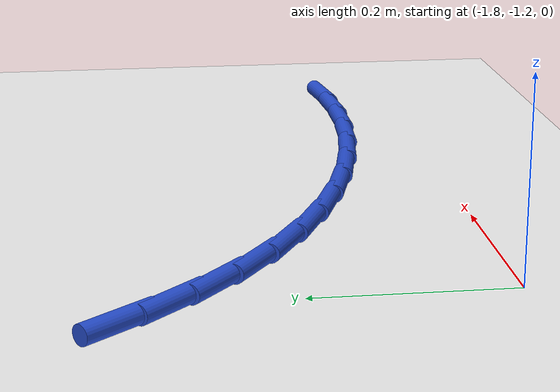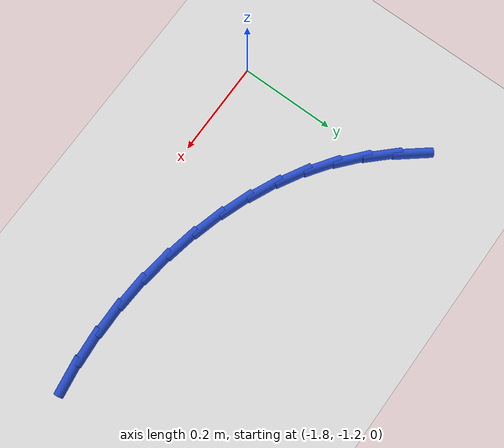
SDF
<sdf version="1.6">
 <world name="default">
  <model name="ground_plane">
   <static>1</static>
   <link name="link">
    <collision name="collision">
     <geometry><plane><normal>0 0 1</normal><size>100 100</size></plane></geometry>
     <surface><friction><ode><mu>100</mu><mu2>50</mu2></ode></friction></surface>
    </collision>
    <visual name="visual">
     <cast_shadows>0</cast_shadows>
     <geometry><plane><normal>0 0 1</normal><size>100 100</size></plane></geometry>
     <material>
      <script><uri>file://media/materials/scripts/gazebo.material</uri><name>Gazebo/WhiteGlow</name></script>
     </material>
    </visual>
   </link>
  </model>
  <model name="line">
   <link name="link_70">
    <pose>-1.8506236121854325 -0.8355162346202203 0.01 0 1.57 -0.882279308371972</pose>
    <collision name="collision">
     <geometry><cylinder><radius>0.01</radius><length>0.08</length></cylinder></geometry>
    </collision>
    <visual name="visual">
     <material>
      <script><name>Gazebo/Blue</name><uri>file://media/materials/scripts/gazebo.material</uri></script>
     </material>
     <geometry><cylinder><radius>0.01</radius><length>0.08</length></cylinder></geometry>
    </visual>
   </link>
   <link name="link_71">
    <pose>-1.8125379447369583 -0.8818015271108821 0.01 0 1.57 -0.7977622971478243</pose>
    <collision name="collision">
     <geometry><cylinder><radius>0.01</radius><length>0.08</length></cylinder></geometry>
    </collision>
    <visual name="visual">
     <material>
      <script><name>Gazebo/Blue</name><uri>file://media/materials/scripts/gazebo.material</uri></script>
     </material>
     <geometry><cylinder><radius>0.01</radius><length>0.08</length></cylinder></geometry>
    </visual>
   </link>
   <link name="link_72">
    <pose>-1.7709494573728466 -0.9244313540415253 0.01 0 1.57 -0.7042579148545719</pose>
    <collision name="collision">
     <geometry><cylinder><radius>0.01</radius><length>0.08</length></cylinder></geometry>
    </collision>
    <visual name="visual">
     <material>
      <script><name>Gazebo/Blue</name><uri>file://media/materials/scripts/gazebo.material</uri></script>
     </material>
     <geometry><cylinder><radius>0.01</radius><length>0.08</length></cylinder></geometry>
    </visual>
   </link>
   <link name="link_73">
    <pose>-1.725420592753774 -0.9631123730297874 0.01 0 1.57 -0.6047429912750778</pose>
    <collision name="collision">
     <geometry><cylinder><radius>0.01</radius><length>0.08</length></cylinder></geometry>
    </collision>
    <visual name="visual">
     <material>
      <script><name>Gazebo/Blue</name><uri>file://media/materials/scripts/gazebo.material</uri></script>
     </material>
     <geometry><cylinder><radius>0.01</radius><length>0.08</length></cylinder></geometry>
    </visual>
   </link>
   <link name="link_74">
    <pose>-1.6755691055042317 -0.9975658547376052 0.01 0 1.57 -0.5091523711785957</pose>
    <collision name="collision">
     <geometry><cylinder><radius>0.01</radius><length>0.08</length></cylinder></geometry>
    </collision>
    <visual name="visual">
     <material>
      <script><name>Gazebo/Blue</name><uri>file://media/materials/scripts/gazebo.material</uri></script>
     </material>
     <geometry><cylinder><radius>0.01</radius><length>0.08</length></cylinder></geometry>
    </visual>
   </link>
   <link name="link_75">
    <pose>-1.6216312444905536 -1.0276764717951494 0.01 0 1.57 -0.42176272553395977</pose>
    <collision name="collision">
     <geometry><cylinder><radius>0.01</radius><length>0.08</length></cylinder></geometry>
    </collision>
    <visual name="visual">
     <material>
      <script><name>Gazebo/Blue</name><uri>file://media/materials/scripts/gazebo.material</uri></script>
     </material>
     <geometry><cylinder><radius>0.01</radius><length>0.08</length></cylinder></geometry>
    </visual>
   </link>
   <link name="link_76">
    <pose>-1.5642309501609821 -1.0534313223092842 0.01 0 1.57 -0.34119753510906614</pose>
    <collision name="collision">
     <geometry><cylinder><radius>0.01</radius><length>0.08</length></cylinder></geometry>
    </collision>
    <visual name="visual">
     <material>
      <script><name>Gazebo/Blue</name><uri>file://media/materials/scripts/gazebo.material</uri></script>
     </material>
     <geometry><cylinder><radius>0.01</radius><length>0.08</length></cylinder></geometry>
    </visual>
   </link>
   <link name="link_77">
    <pose>-1.5039981337239934 -1.074819081821079 0.01 0 1.57 -0.26597623923499847</pose>
    <collision name="collision">
     <geometry><cylinder><radius>0.01</radius><length>0.08</length></cylinder></geometry>
    </collision>
    <visual name="visual">
     <material>
      <script><name>Gazebo/Blue</name><uri>file://media/materials/scripts/gazebo.material</uri></script>
     </material>
     <geometry><cylinder><radius>0.01</radius><length>0.08</length></cylinder></geometry>
    </visual>
   </link>
   <link name="link_78">
    <pose>-1.441562706388058 -1.0918284258716044 0.01 0 1.57 -0.19465972311104907</pose>
    <collision name="collision">
     <geometry><cylinder><radius>0.01</radius><length>0.08</length></cylinder></geometry>
    </collision>
    <visual name="visual">
     <material>
      <script><name>Gazebo/Blue</name><uri>file://media/materials/scripts/gazebo.material</uri></script>
     </material>
     <geometry><cylinder><radius>0.01</radius><length>0.08</length></cylinder></geometry>
    </visual>
   </link>
   <link name="link_79">
    <pose>-1.3775545793616515 -1.10444803000193 0.01 0 1.57 -0.12586572365115867</pose>
    <collision name="collision">
     <geometry><cylinder><radius>0.01</radius><length>0.08</length></cylinder></geometry>
    </collision>
    <visual name="visual">
     <material>
      <script><name>Gazebo/Blue</name><uri>file://media/materials/scripts/gazebo.material</uri></script>
     </material>
     <geometry><cylinder><radius>0.01</radius><length>0.08</length></cylinder></geometry>
    </visual>
   </link>
   <link name="link_80">
    <pose>-1.3126036638532455 -1.112666569753126 0.01 0 1.57 -0.05825350355717183</pose>
    <collision name="collision">
     <geometry><cylinder><radius>0.01</radius><length>0.08</length></cylinder></geometry>
    </collision>
    <visual name="visual">
     <material>
      <script><name>Gazebo/Blue</name><uri>file://media/materials/scripts/gazebo.material</uri></script>
     </material>
     <geometry><cylinder><radius>0.01</radius><length>0.08</length></cylinder></geometry>
    </visual>
   </link>
   <link name="link_81">
    <pose>-1.2473398710713155 -1.116472720666262 0.01 0 1.57 0.009508461750210272</pose>
    <collision name="collision">
     <geometry><cylinder><radius>0.01</radius><length>0.08</length></cylinder></geometry>
    </collision>
    <visual name="visual">
     <material>
      <script><name>Gazebo/Blue</name><uri>file://media/materials/scripts/gazebo.material</uri></script>
     </material>
     <geometry><cylinder><radius>0.01</radius><length>0.08</length></cylinder></geometry>
    </visual>
   </link>
   <link name="link_82">
    <pose>-1.1823931122243334 -1.1158551582824074 0.01 0 1.57 0.07860139482332576</pose>
    <collision name="collision">
     <geometry><cylinder><radius>0.01</radius><length>0.08</length></cylinder></geometry>
    </collision>
    <visual name="visual">
     <material>
      <script><name>Gazebo/Blue</name><uri>file://media/materials/scripts/gazebo.material</uri></script>
     </material>
     <geometry><cylinder><radius>0.01</radius><length>0.08</length></cylinder></geometry>
    </visual>
   </link>
   <link name="link_83">
    <pose>-1.1183721772071358 -1.1108126346742029 0.01 0 1.57 0.146879062784516</pose>
    <collision name="collision">
     <geometry><cylinder><radius>0.01</radius><length>0.08</length></cylinder></geometry>
    </collision>
    <visual name="visual">
     <material>
      <script><name>Gazebo/Blue</name><uri>file://media/materials/scripts/gazebo.material</uri></script>
     </material>
     <geometry><cylinder><radius>0.01</radius><length>0.08</length></cylinder></geometry>
    </visual>
   </link>
  </model>
 </world>
</sdf>
